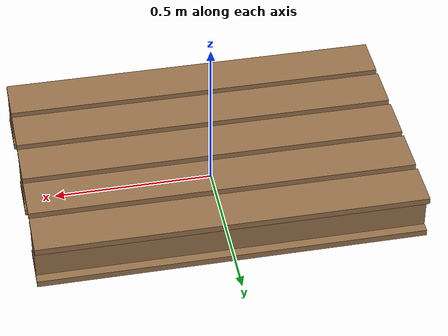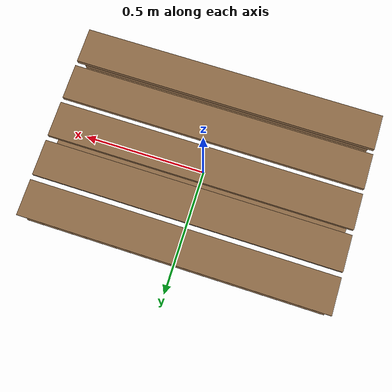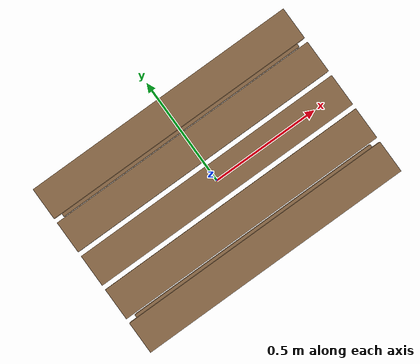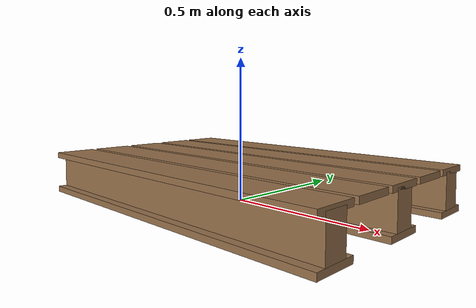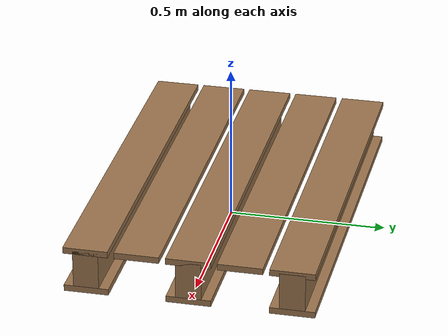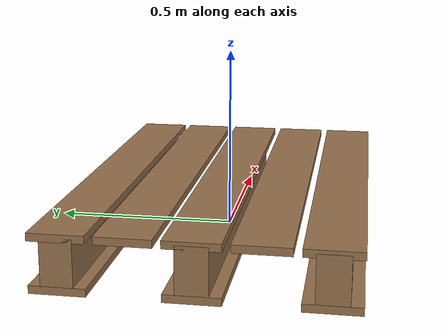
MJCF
<mujoco>
  <!-- Standard EUR pallet 1200x800mm (primitive approximation) -->
  <asset>
    <material name="pallet_wood" rgba="0.6 0.45 0.3 1"/>
  </asset>

  <worldbody>
    <body name="pallet_root">
      <!-- Top boards (5 boards) -->
      <geom name="top_1" type="box" size="0.6 0.07 0.01" pos="0 0.32 0.14" material="pallet_wood"/>
      <geom name="top_2" type="box" size="0.6 0.07 0.01" pos="0 0.16 0.14" material="pallet_wood"/>
      <geom name="top_3" type="box" size="0.6 0.07 0.01" pos="0 0 0.14" material="pallet_wood"/>
      <geom name="top_4" type="box" size="0.6 0.07 0.01" pos="0 -0.16 0.14" material="pallet_wood"/>
      <geom name="top_5" type="box" size="0.6 0.07 0.01" pos="0 -0.32 0.14" material="pallet_wood"/>

      <!-- Stringers (3 longitudinal support beams) -->
      <geom name="stringer_1" type="box" size="0.6 0.04 0.06" pos="0 0.32 0.08" material="pallet_wood"/>
      <geom name="stringer_2" type="box" size="0.6 0.04 0.06" pos="0 0 0.08" material="pallet_wood"/>
      <geom name="stringer_3" type="box" size="0.6 0.04 0.06" pos="0 -0.32 0.08" material="pallet_wood"/>

      <!-- Bottom boards (3 boards) -->
      <geom name="bottom_1" type="box" size="0.6 0.07 0.01" pos="0 0.32 0.01" material="pallet_wood"/>
      <geom name="bottom_2" type="box" size="0.6 0.07 0.01" pos="0 0 0.01" material="pallet_wood"/>
      <geom name="bottom_3" type="box" size="0.6 0.07 0.01" pos="0 -0.32 0.01" material="pallet_wood"/>
    </body>
  </worldbody>
</mujoco>
